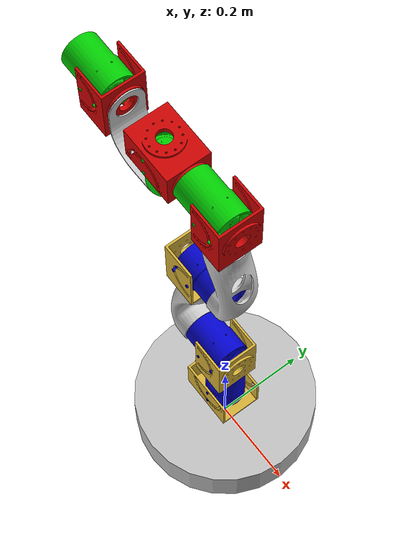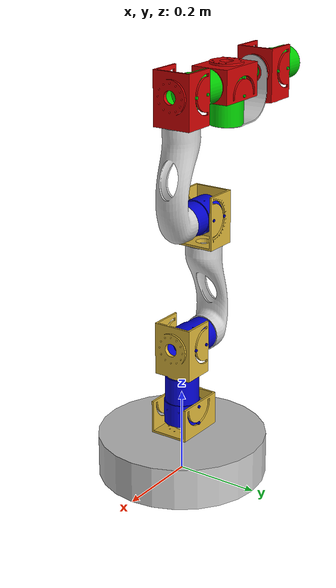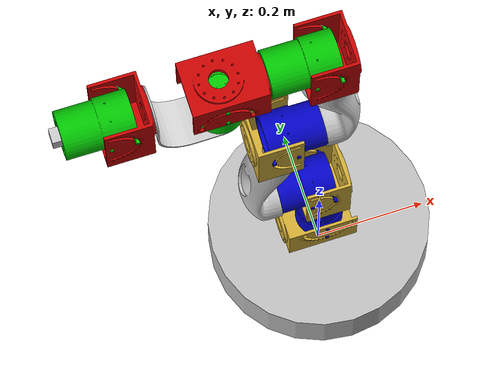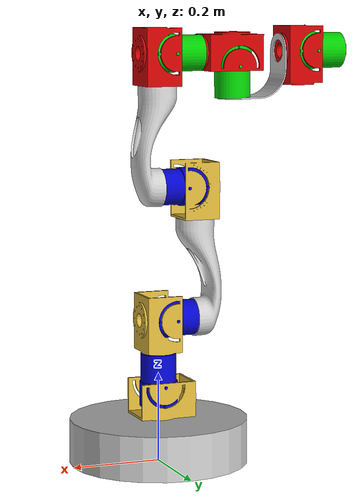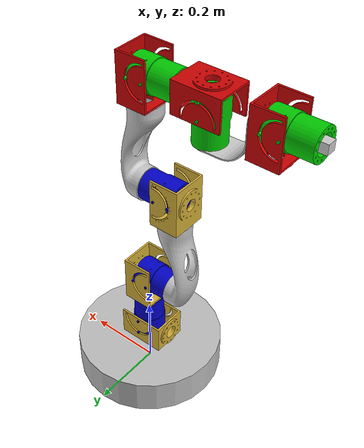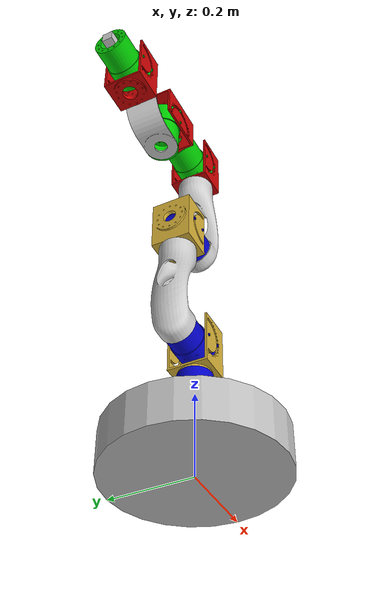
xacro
<?xml version="1.0" ?>
<robot name="mod6r_standard" xmlns:xacro="http://ros.org/wiki/xacro">
	<xacro:include filename="$(find moir_mark2_urdf_ros)/urdf/modular_robot.urdf.xacro"/>
	<xacro:pedestal child="module_1" length="0.0" rpy="0 0 0" xyz="0 0 0.0"/>
	<xacro:heavy-module name="module_1" rpy_joint="0 0 0" rpy_module="0 0 0" rpy_motor="0 0 0" xyz_joint="0 0 0.07474" xyz_module="0 0 0.045" xyz_motor="0 0 0"/>
	<xacro:module_joint axis="0 0 1" child="module_2" name="joint_1" parent="module_1_link" rpy="0 0 0" xyz="0 0 0.073"/>
	<xacro:transmission_tag act_name="motor_1" joint_name="joint_1" trans_name="transmission_1"/>
	<xacro:heavy-module name="module_2" rpy_joint="0 -1.57 0" rpy_module="0 -1.57 0" rpy_motor="0 0 0" xyz_joint="-0.02974 0 0.075" xyz_module="0 0 0.075" xyz_motor="0 0 0"/>
	<xacro:module_joint axis="0 0 1" child="link_1" name="joint_2" parent="module_2_link" rpy="0 0 0" xyz="0 0 0.073"/>
	<xacro:transmission_tag act_name="motor_2" joint_name="joint_2" trans_name="transmission_2"/>
	<xacro:pipe name="link_1" rpy="0 0 0" xyz="0 0 0"/>
	<xacro:fixed child="module_3" name="fixed_joint_2" parent="link_1" rpy="3.14 0 0" xyz="0.22 0 -0.015"/>
	<xacro:heavy-module name="module_3" rpy_joint="0 0 0" rpy_module="0 0 0" rpy_motor="0 0 0" xyz_joint="0.075 0 0.02974" xyz_module="0.075 0 0" xyz_motor="0 0 0"/>
	<xacro:module_joint axis="0 0 1" child="link_2" name="joint_3" parent="module_3_link" rpy="0 0 0" xyz="0 0 0.073"/>
	<xacro:transmission_tag act_name="motor_3" joint_name="joint_3" trans_name="transmission_3"/>
	<xacro:pipe name="link_2" rpy="0 0 0" xyz="0 0 0"/>
	<xacro:fixed child="module_4" name="fixed_joint_3" parent="link_2" rpy="3.14 0 0" xyz="0.22 0 -0.015"/>
	<xacro:light-module name="module_4" rpy_joint="0 0 0" rpy_module="0 0 0" rpy_motor="0 0 0" xyz_joint="0.075 0 0.02974" xyz_module="0.075 0 0" xyz_motor="0 0 0"/>
	<xacro:module_joint axis="0 0 1" child="module_5" name="joint_4" parent="module_4_link" rpy="0 0 0" xyz="0 0 0.073"/>
	<xacro:transmission_tag act_name="motor_4" joint_name="joint_4" trans_name="transmission_4"/>
	<xacro:light-module name="module_5" rpy_joint="0 -1.57 0" rpy_module="0 -1.57 0" rpy_motor="0 0 0" xyz_joint="-0.02974 0 0.075" xyz_module="0 0 0.075" xyz_motor="0 0 0"/>
	<xacro:module_joint axis="0 0 1" child="link_3" name="joint_5" parent="module_5_link" rpy="0 0 0" xyz="0 0 0.073"/>
	<xacro:transmission_tag act_name="motor_5" joint_name="joint_5" trans_name="transmission_5"/>
	<xacro:curved name="link_3" rpy="0 0 0" xyz="0.0065 0 0"/>
	<xacro:fixed child="module_6" name="fixed_joint_5" parent="link_3" rpy="0 0 0" xyz="0.115 0 -0.105"/>
	<xacro:light-module name="module_6" rpy_joint="0 1.57 0" rpy_module="0 1.57 0" rpy_motor="0 0 0" xyz_joint="0.07474 0 0" xyz_module="0.045 0 0" xyz_motor="0 0 0"/>
	<xacro:module_joint axis="0 0 1" child="module_7" name="joint_6" parent="module_6_link" rpy="0 0 0" xyz="0 0 0.073"/>
	<xacro:transmission_tag act_name="motor_6" joint_name="joint_6" trans_name="transmission_6"/>
	<xacro:block name="module_7"/>
	<gazebo>
		<plugin filename="libgazebo_ros_control.so" name="control"/>
		<plugin filename="libgazebo_ros_joint_state_publisher.so" name="joint_state_publisher">
			<jointName>joint_1, joint_2, joint_3, joint_4, joint_5, joint_6</jointName>
		</plugin>
	</gazebo>
</robot>

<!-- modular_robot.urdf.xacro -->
<robot name="macros" xmlns:xacro="http://ros.org/wiki/xacro">
	<xacro:include filename="$(find moir_mark2_urdf_ros)/urdf/material.xacro" />

	<!-- MACRO for Pedestal -->
	<xacro:macro name="pedestal" params="length xyz child rpy">
		<link name="world"/>

		<!-- Pedestal Link -->
		<link name="base_link">
			<visual>
				<geometry>
					<cylinder length="0.1" radius="0.2"/>
				</geometry>
				<material name="silver">
					<color rgba="0.75 0.75 0.75 1"/>
				</material>
				<!-- origin z half of the length -->
				<origin rpy="0 0 0" xyz="0 0 0.05"/>
			</visual>
			<!-- Similar to Visual -->
			<collision>
				<geometry>
					<cylinder length="0.1" radius="0.2"/>
				</geometry>
				<origin rpy="0 0 0" xyz="0 0 0.05"/>
			</collision>
			<inertial>
				<mass value="1.0"/>
				<origin rpy="0 0 0" xyz="0 0 0.025"/>
				<inertia ixx="0.0108" iyy="0.0108" izz="0.02" ixy="0" ixz="0" iyz="0"/>
			</inertial>
		</link>

		<!-- Fixed joint -->
		<joint name="fixed_1" type="fixed">
			<parent link="world"/>
			<child link="base_link"/>
		</joint>

		<link name="link_0">
			<visual>
				<geometry>
					<cylinder length="${length}" radius="0.025"/>
				</geometry>
				<material name="white" />
				<origin rpy="0 0 0" xyz="${xyz}"/>
			</visual>
			<!-- Similar to Visual -->
			<collision>
				<geometry>
					<cylinder length="${length}" radius="0.025"/>
				</geometry>
				<origin rpy="0 0 0" xyz="${xyz}"/>
			</collision>
			<inertial>
				<!-- Assume Linear Density of 0.1 -->
				<mass value="${0.1 * length}"/>
				<origin rpy="0 0 0" xyz="${xyz}"/>
				<inertia ixx="${0.0333 * length * length * length}" iyy="${0.0333 * length * length * length}" izz="0.0" ixy="0" ixz="0" iyz="0"/>
			</inertial>
		</link>

		<joint name="fixed_2" type="fixed">
			<parent link="base_link"/>
			<child link="link_0"/>
			<origin xyz="0 0 0.1" rpy="0 0 0"/>
		</joint>
		<joint name="fixed_3" type="fixed">
			<parent link="link_0"/>
			<child link="${child}"/>
			<origin xyz="0 0 ${length}" rpy="${rpy}"/>
		</joint>
	</xacro:macro>

	<!-- MACRO for Module Link -->
	<xacro:macro name="heavy-module" params="name xyz_module rpy_module xyz_motor rpy_motor xyz_joint rpy_joint">
		<!-- Module -->
		<link name="${name}">
    		<inertial>
      			<origin xyz="-0.020832 0 -0.01338" rpy="0 0 0" />
      			<mass value="0.26551"/>
      			<!-- This inertia is only for M1 module -->
      			<!-- Need to make it variable for M2 module -->
      			<inertia ixx="0.00063611" ixy="-1.3039E-07" ixz="6.0056E-05" iyy="0.00051541" iyz="-8.4349E-08" izz="0.00077605" />
    		</inertial>
    		<visual>
    			<!-- A default value of pi about z, it just reverses the inertia values about x and y -->
      			<origin xyz="${xyz_module}" rpy="${rpy_module}"/>
      			<geometry>
        			<mesh filename="package://moir_mark2_urdf_ros/meshes/twist_unit.STL" />
      			</geometry>
      			<material name="golden" />
    		</visual>
    		<collision>
      			<origin xyz="${xyz_module}" rpy="${rpy_module}" />
      				<geometry>
        				<mesh filename="package://moir_mark2_urdf_ros/meshes/twist_unit.STL" />
      				</geometry>
    		</collision>
  		</link>

  		<!-- Module Motor -->
  		<link name="${name}_link">
    		<inertial>
      			<origin xyz="3.9399E-06 0.00048422 0.0054114" rpy="0 0 0" />
      			<mass value="0.35501" />
      			<inertia ixx="0.0002858" ixy="3.6859E-09" ixz="2.8312E-07" iyy="0.00028282" iyz="-3.7064E-08" izz="0.00033469" />
    		</inertial>
    		<visual>
      			<origin xyz="${xyz_motor}" rpy="${rpy_motor}" />
      			<geometry>
        			<mesh filename="package://moir_mark2_urdf_ros/meshes/casings.STL" />
      			</geometry>
      			<material name="blue" />
    		</visual>
    		<collision>
      			<origin xyz="${xyz_motor}" rpy="${rpy_motor}" />
      			<geometry>
        			<mesh filename="package://moir_mark2_urdf_ros/meshes/casings.STL" />
      			</geometry>
    		</collision>
  		</link>

  		<!-- Limit is -1.54 to 0.75 -->
  		<joint name="${name}_link_joint" type="fixed">
    		<origin xyz="${xyz_joint}" rpy="${rpy_joint}" />
    		<parent link="${name}" />
    		<child link="${name}_link" />
  		</joint>
	</xacro:macro>

	<xacro:macro name="light-module" params="name xyz_module rpy_module xyz_motor rpy_motor xyz_joint rpy_joint">
		<!-- Module -->
		<link name="${name}">
    		<inertial>
      			<origin xyz="-0.020832 2.3575E-05 -0.013385" rpy="0 0 0" />
      			<mass value="0.26551"/>
      			<!-- This inertia is only for M1 module -->
      			<!-- Need to make it variable for M2 module -->
      			<inertia ixx="0.00063611" ixy="-1.3039E-07" ixz="6.0056E-05" iyy="0.00051541" iyz="-8.4349E-08" izz="0.00077605" />
    		</inertial>
    		<visual>
    			<!-- A default value of pi about z, it just reverses the inertia values about x and y -->
      			<origin xyz="${xyz_module}" rpy="${rpy_module}"/>
      			<geometry>
        			<mesh filename="package://moir_mark2_urdf_ros/meshes/twist_unit.STL" />
      			</geometry>
      			<material name="red" />
    		</visual>
    		<collision>
      			<origin xyz="${xyz_module}" rpy="${rpy_module}" />
      				<geometry>
        				<mesh filename="package://moir_mark2_urdf_ros/meshes/twist_unit.STL" />
      				</geometry>
    		</collision>
  		</link>

  		<!-- Module Motor -->
  		<link name="${name}_link">
    		<inertial>
      			<origin xyz="3.9399E-06 0.00048422 0.0054114" rpy="0 0 0" />
      			<mass value="0.47605" />
      			<inertia ixx="0.00027014" ixy="3.6859E-09" ixz="2.8312E-07" iyy="0.00026456" iyz="-3.7064E-08" izz="0.0002545" />
    		</inertial>
    		<visual>
      			<origin xyz="${xyz_motor}" rpy="${rpy_motor}" />
      			<geometry>
        			<mesh filename="package://moir_mark2_urdf_ros/meshes/casings.STL" />
      			</geometry>
      			<material name="green" />
    		</visual>
    		<collision>
      			<origin xyz="${xyz_motor}" rpy="${rpy_motor}" />
      			<geometry>
        			<mesh filename="package://moir_mark2_urdf_ros/meshes/casings.STL" />
      			</geometry>
    		</collision>
  		</link>

  		<!-- Limit is -1.54 to 0.75 -->
  		<joint name="${name}_link_joint" type="fixed">
    		<origin xyz="${xyz_joint}" rpy="${rpy_joint}" />
    		<parent link="${name}" />
    		<child link="${name}_link" />
  		</joint>
	</xacro:macro>

	<!-- MACRO for Curved Link -->
	<xacro:macro name="curved" params="name xyz rpy">
  		<link name="${name}">
    		<inertial>
      			<origin xyz="0.059692 -0.00077289 -0.031782" rpy="0 0 0" />
      			<mass value="0.070959" />
      			<inertia ixx="0.00014889" ixy="0" ixz="0" iyy="0.00026116" iyz="0" izz="0.00019073" />
    		</inertial>
    		<visual>
      			<origin xyz="${xyz}" rpy="${rpy}" />
      			<geometry>
        			<mesh filename="package://moir_mark2_urdf_ros/meshes/curved_link.STL" />
      			</geometry>
      			<material name="white" />
    		</visual>
    		<collision>
				<origin xyz="${xyz}" rpy="${rpy}" />
      			<geometry>
        			<mesh filename="package://moir_mark2_urdf_ros/meshes/curved_link.STL" />
      			</geometry>
    		</collision>
  		</link>
	</xacro:macro>

	<!-- MACRO for Link Length -->
	<xacro:macro name="pipe" params="name xyz rpy">
		<link name="${name}">
			<inertial>
		  		<origin xyz="-0.12242 -1.7347E-17 0" rpy="0 0 0" />
		  		<mass value="0.10873" />
		  		<inertia ixx="3.8522E-05" ixy="-1.7097E-19" ixz="1.1329E-20" iyy="0.00081357" iyz="-1.5654E-22" izz="0.00082396" />
			</inertial>
			<visual>
		  		<origin xyz="${xyz}" rpy="${rpy}" />
		  		<geometry>
					<mesh filename="package://moir_mark2_urdf_ros/meshes/link_straight.STL" />
		  		</geometry>
		  		<material name="white" />
			</visual>
			<collision>
		  		<origin xyz="${xyz}" rpy="${rpy}" />
		  		<geometry>
					<mesh filename="package://moir_mark2_urdf_ros/meshes/link_straight.STL" />
		  		</geometry>
			</collision>
	  	</link>
	</xacro:macro>

	<!-- MACRO for Block -->
	<xacro:macro name="block" params="name">
		<link name="${name}">
			<inertial>
				<origin xyz="0 0 0" rpy="0 0 0" />
				<mass value="0.001" />
				<inertia ixx="0.001" ixy="0" ixz="0" iyy="0.001" iyz="0" izz="0.001" />
			</inertial>
			<visual>
				<origin xyz="0 0 0" rpy="0 0 0"/>
				<geometry>
					<box size="0.025 0.025 0.025"/>
				</geometry>
				<material name="white"/>
			</visual>
			<collision>
				<origin xyz="0 0 0" rpy="0 0 0"/>
				<geometry>
					<box size="0.025 0.025 0.025"/>
				</geometry>
			</collision>
		</link>
	</xacro:macro>

	<!-- MACRO for Fixed Joint -->
	<xacro:macro name="fixed" params="name parent child xyz rpy">
		<!-- Fixed Joint -->
		<joint name="${name}" type="fixed">
			<parent link="${parent}"/>
			<child link="${child}"/>
			<origin rpy="${rpy}" xyz="${xyz}"/>
		</joint>
	</xacro:macro>

	<!-- MACRO for Module Joint -->
	<xacro:macro name="module_joint" params="name parent child axis xyz rpy">
		<!-- Rotatory Joint -->
		<joint name="${name}" type="continuous">
			<axis xyz="${axis}"/>
			<parent link="${parent}"/>
			<child link="${child}"/>
			<origin rpy="${rpy}" xyz="${xyz}"/>
			<limit effort="1000.0" velocity="0.5"/>
		</joint>
	</xacro:macro>

	<!-- MACRO for transmission tags -->
	<xacro:macro name="transmission_tag" params="trans_name joint_name act_name">
		<transmission name="${trans_name}">
			<type>transmission_interface/SimpleTransmission</type>
			<joint name="${joint_name}">
				<hardwareInterface>PositionJointInterface</hardwareInterface>
			</joint>
			<actuator name="${act_name}">
				<hardwareInterface>PositionJointInterface</hardwareInterface>
				<mechanicalReduction>1</mechanicalReduction>
			</actuator>
		</transmission>
	</xacro:macro>
</robot>

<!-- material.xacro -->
<robot>

	<material name="white">
		<color rgba="0.8 0.8 0.8 1" />
	</material>

	<material name="black">
		<color rgba="0.1 0.1 0.1 1" />
	</material>

	<material name="red">
		<color rgba="0.8 0.01 0.01 1" />
	</material>

	<material name="green">
		<color rgba="0.01 0.8 0.01 1" />
	</material>

	<material name="blue">
		<color rgba="0.01 0.01 0.8 1" />
	</material>

	<material name="golden">
		<color rgba="${212/255} ${175/255} ${55/255} 1" />
	</material>

</robot>
